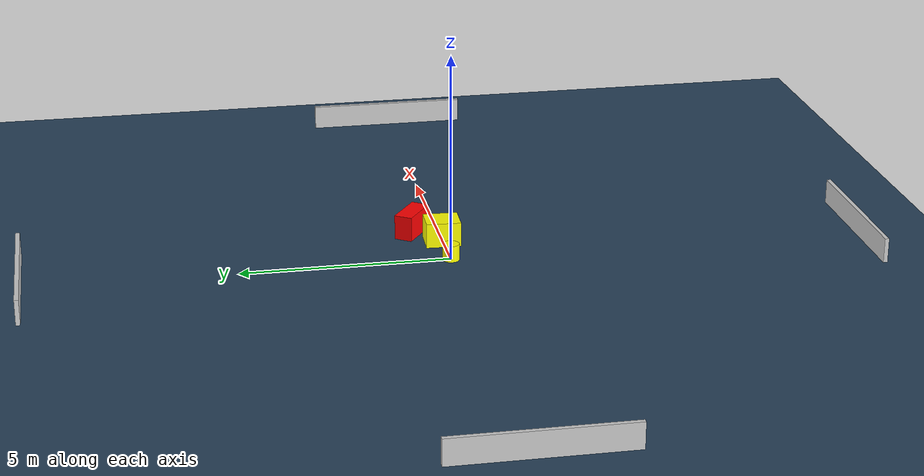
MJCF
<?xml version="1.0" ?>
<mujoco model="generated_environment">
  <option timestep="0.01" integrator="RK4" cone="elliptic"/>
  <default>
    <geom density="1"/>
  </default>
  <asset>
    <texture builtin="gradient" height="3072" name="skybox" rgb1="0.3 0.5 0.7" rgb2="0 0 0" type="skybox" width="512"/>
    <texture builtin="checker" height="300" name="groundplane" rgb1="0.2 0.3 0.4" rgb2="0.1 0.2 0.3" type="2d" width="300"/>
    <material name="groundplane" reflectance="0.2" texrepeat="5 5" texture="groundplane"/>
  </asset>
  <worldbody>
    <light dir="0 0 -1" directional="true" pos="0 0 1.5"/>
    <geom condim="3" friction="0.5 0.005 0.001" material="groundplane" name="floor" pos="0 0 0" size="0 0 0.05" type="plane"/>
    <body name="walls">
      <geom name="wall_1" condim="4" pos="-10.0 0.0 0.3" rgba="0.800000011920929 0.800000011920929 0.800000011920929 1.0" size="0.05 2.0 0.3" type="box"/>
      <geom name="wall_2" condim="4" pos="10.0 0.0 0.3" rgba="0.800000011920929 0.800000011920929 0.800000011920929 1.0" size="0.05 2.0 0.3" type="box"/>
      <geom name="wall_3" condim="4" pos="0.0 -10.0 0.3" rgba="0.800000011920929 0.800000011920929 0.800000011920929 1.0" size="2.0 0.05 0.3" type="box"/>
      <geom name="wall_4" condim="4" pos="0.0 10.0 0.3" rgba="0.800000011920929 0.800000011920929 0.800000011920929 1.0" size="2.0 0.05 0.3" type="box"/>
    </body>
    <body name="robot">
      <joint name="joint_x" type="slide" pos="0 0 0" axis="1 0 0"/>
      <joint name="joint_y" type="slide" pos="0 0 0" axis="0 1 0"/>
      <geom name="robot" type="cylinder" pos="0.0 0.0 0.2" size="0.2 0.2 0.0" mass="5.0" friction="1.0 0.005 0.0001" condim="4" rgba="1.0 1.0 0.0 1.0"/>
    </body>
    <body name="obstacle_1_movable">
      <geom name="obstacle_1_movable" condim="4" pos="1.1182235353701118 0.01859605817682652 0.3" euler="0 0 268.09721730868847" friction="0.0 0.005 0.001" rgba="1.0 1.0 0.0 1.0" size="0.4150559703678771 0.3501622184038497 0.3" type="box" mass="0.1"/>
      <joint type="free"/>
    </body>
    <body name="obstacle_2_static">
      <geom name="obstacle_2_static" condim="4" pos="1.8003182244572575 0.6365398747348063 0.3" euler="0 0 325.85923563846256" friction="0.0 0.005 0.001" rgba="1.0 0.0 0.0 1.0" size="0.5024936431944362 0.22056300392949796 0.3" type="box"/>
    </body>
  </worldbody>
  <actuator>
    <motor name="actuator_x" joint="joint_x" gear="1" ctrlrange="-1 1"/>
    <motor name="actuator_y" joint="joint_y" gear="1" ctrlrange="-1 1"/>
  </actuator>
</mujoco>
